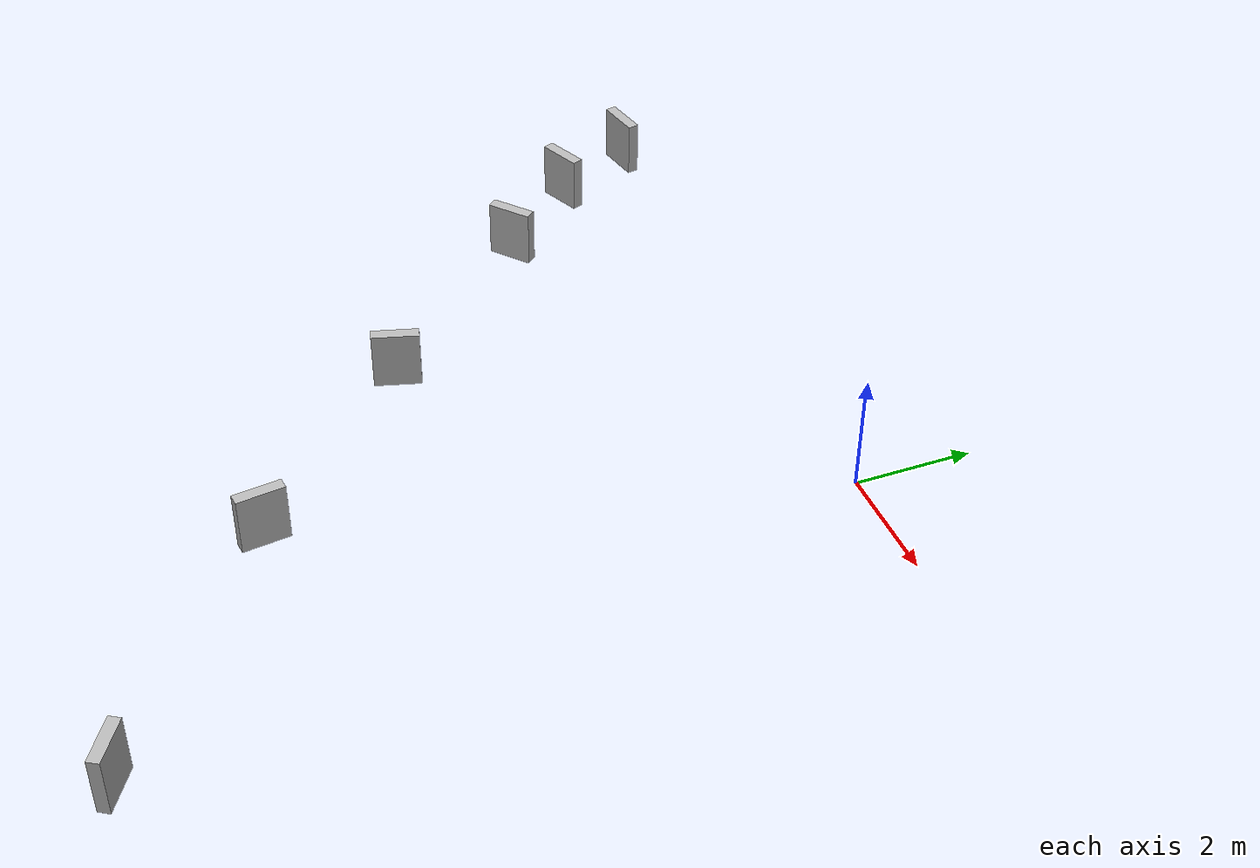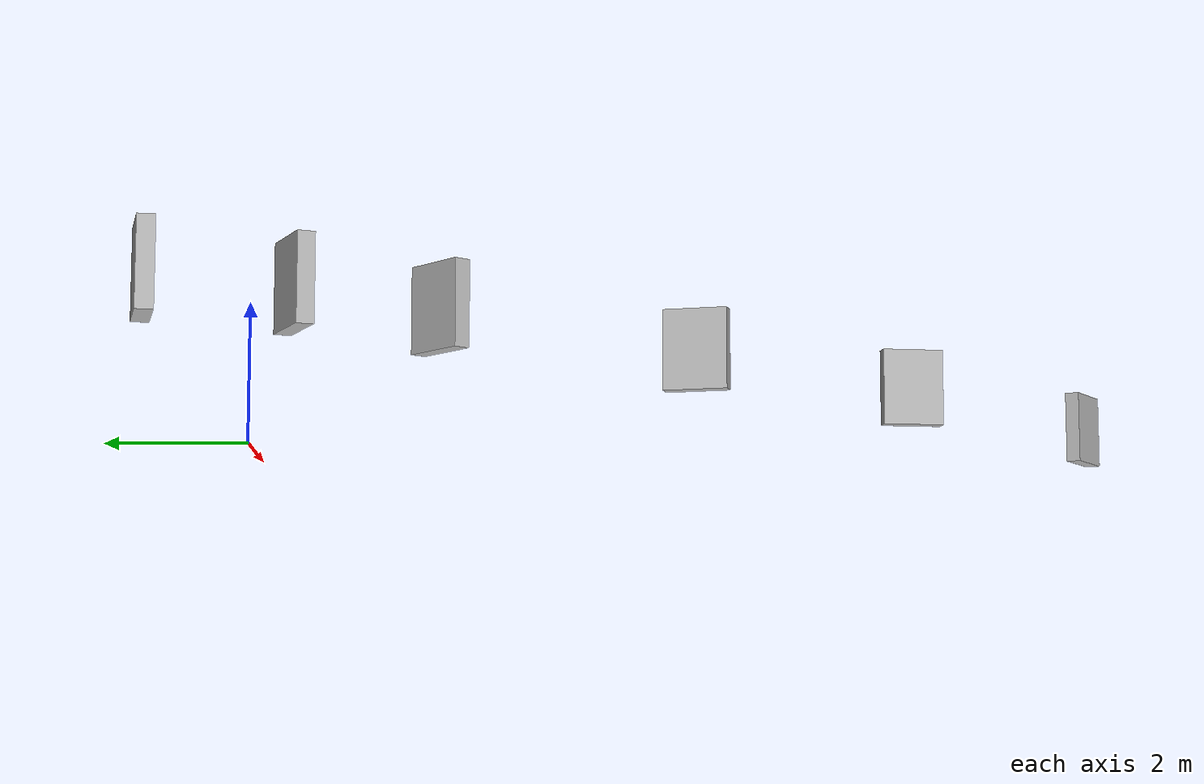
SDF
<?xml version="1.0" ?>
<sdf version="1.7">
    <model name="track_walls">
        <static>true</static>

        <!-- ===== OUTER WALL ===== -->
        <!-- Each link is a small rotated wall -->

        <!-- Curve 1 -->
        <link name="wall_1">
        <pose>-10 0 0.5 0 0 0.2</pose>
        <collision name="c">
            <geometry><box><size>0.8 0.2 1</size></box></geometry>
        </collision>
        <visual name="v">
            <geometry><box><size>0.8 0.2 1</size></box></geometry>
        </visual>
        </link>

        <link name="wall_2">
        <pose>-9.2 -1.5 0.5 0 0 0.4</pose>
        <collision name="c">
            <geometry><box><size>0.8 0.2 1</size></box></geometry>
        </collision>
        <visual name="v">
            <geometry><box><size>0.8 0.2 1</size></box></geometry>
        </visual>
        </link>

        <link name="wall_3">
        <pose>-7.8 -3.0 0.5 0 0 0.7</pose>
        <collision name="c">
            <geometry><box><size>0.8 0.2 1</size></box></geometry>
        </collision>
        <visual name="v">
            <geometry><box><size>0.8 0.2 1</size></box></geometry>
        </visual>
        </link>

        <!-- ===== SLALOM SECTION ===== -->
        <link name="wall_4">
        <pose>-5 -6 0.5 0 0 1.3</pose>
        <collision name="c">
            <geometry><box><size>0.8 0.2 1</size></box></geometry>
        </collision>
        <visual name="v">
            <geometry><box><size>0.8 0.2 1</size></box></geometry>
        </visual>
        </link>

        <link name="wall_5">
        <pose>-2 -9 0.5 0 0 1.7</pose>
        <collision name="c">
            <geometry><box><size>0.8 0.2 1</size></box></geometry>
        </collision>
        <visual name="v">
            <geometry><box><size>0.8 0.2 1</size></box></geometry>
        </visual>
        </link>

        <!-- ===== HAIRPIN ===== -->
        <link name="wall_6">
        <pose>2 -12 0.5 0 0 2.6</pose>
        <collision name="c">
            <geometry><box><size>0.8 0.2 1</size></box></geometry>
        </collision>
        <visual name="v">
            <geometry><box><size>0.8 0.2 1</size></box></geometry>
        </visual>
        </link>

    </model>
</sdf>
